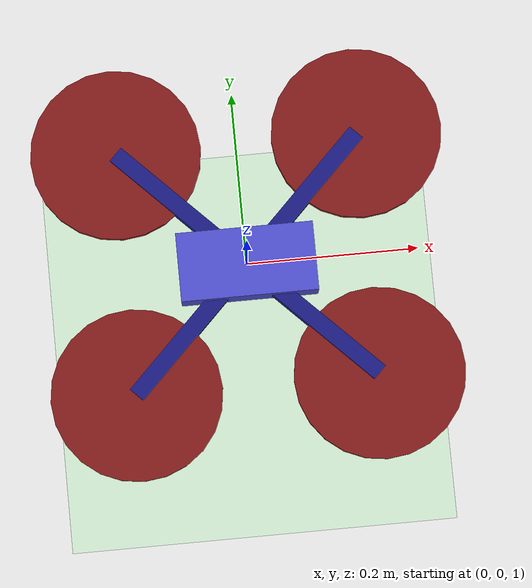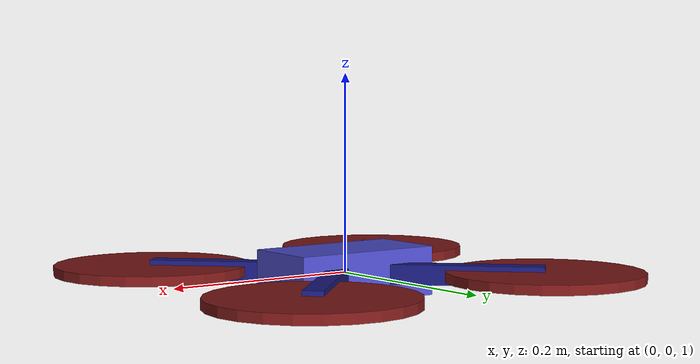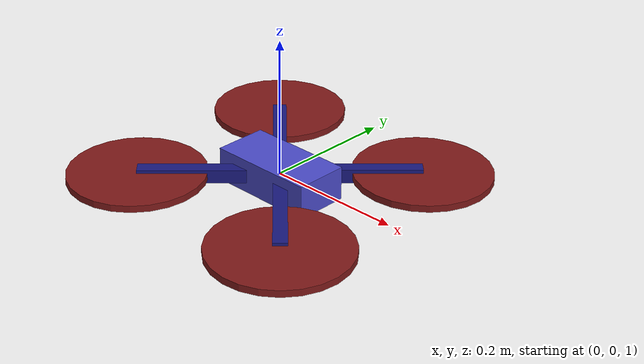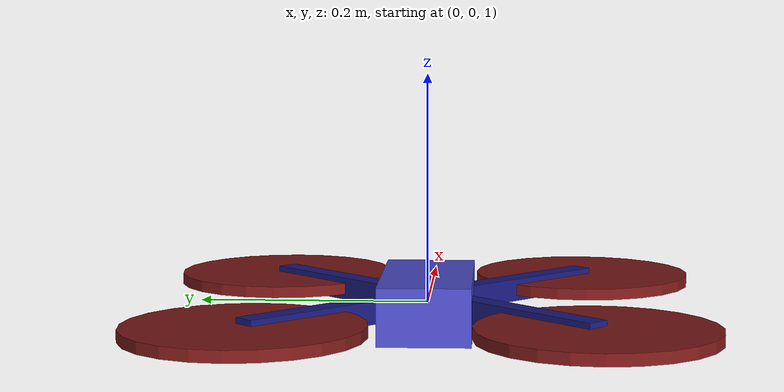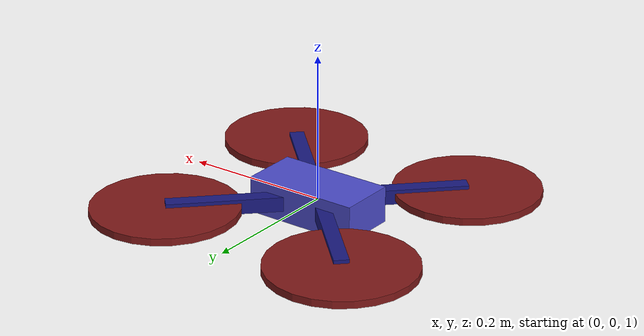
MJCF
<?xml version="1.0" ?>
<mujoco model="Quadcopter">
   <compiler angle="degree" coordinate="local" inertiafromgeom="true"/>
   <worldbody>
      <geom name="ground" type="plane" size="2 2 0.02" friction="1.0" pos="0.0 0.0 0.0" rgba="0.8 0.9 0.8 1.0"/>
      <body name="quadrotor" pos="0.0 0.0 1.0" quat="1 0 0 0">
         <geom name="geom" type="box" pos="0.0 0.0 0.0" quat="1 0 0 0" size="0.08 0.04 0.025" mass="0.75" density="1000" rgba="0.3 0.3 0.8 1.0"/>
         <joint name="root_joint" type="free" limited="false" pos="0.0 0.0 0.0" axis="0.0 0.0 1.0" range="-1.0 1.0" damping="0.1" stiffness="0.0" armature="0.0"/>
         <geom name="rotor_arm_geom_0" type="box" pos="0.0 0.0 0.0" quat="0.92388 0 0 0.382683" size="0.2 0.01 0.01" mass="0.01" density="1000" rgba="0.1 0.1 0.5 1.0"/>
         <body name="rotor_prop_0" pos="0.1414213562373095 0.14142135623730953 0.0" quat="1 0 0 0">
            <joint name="rotor_joint_0" type="hinge" limited="true" pos="0.1414213562373095 0.14142135623730953 0.0" axis="0.0 1.0 0.0" range="-0.001 0.001" damping="1000" stiffness="10000" armature="0.0"/>
            <geom name="rotor_prop_geom_0" type="cylinder" size="0.1 0.005" pos="0.0 0.0 0.0" mass="0.05" density="1000" rgba="0.5 0.1 0.1 1.0"/>
         </body>
         <geom name="rotor_arm_geom_1" type="box" pos="0.0 0.0 0.0" quat="0.382683 0 0 0.92388" size="0.2 0.01 0.01" mass="0.01" density="1000" rgba="0.1 0.1 0.5 1.0"/>
         <body name="rotor_prop_1" pos="-0.1414213562373095 0.14142135623730953 0.0" quat="1 0 0 0">
            <joint name="rotor_joint_1" type="hinge" limited="true" pos="-0.1414213562373095 0.14142135623730953 0.0" axis="0.0 1.0 0.0" range="-0.001 0.001" damping="1000" stiffness="10000" armature="0.0"/>
            <geom name="rotor_prop_geom_1" type="cylinder" size="0.1 0.005" pos="0.0 0.0 0.0" mass="0.05" density="1000" rgba="0.5 0.1 0.1 1.0"/>
         </body>
         <geom name="rotor_arm_geom_2" type="box" pos="0.0 0.0 0.0" quat="-0.382683 0 0 0.92388" size="0.2 0.01 0.01" mass="0.01" density="1000" rgba="0.1 0.1 0.5 1.0"/>
         <body name="rotor_prop_2" pos="-0.1414213562373095 -0.1414213562373095 0.0" quat="1 0 0 0">
            <joint name="rotor_joint_2" type="hinge" limited="true" pos="-0.1414213562373095 -0.1414213562373095 0.0" axis="0.0 1.0 0.0" range="-0.001 0.001" damping="1000" stiffness="10000" armature="0.0"/>
            <geom name="rotor_prop_geom_2" type="cylinder" size="0.1 0.005" pos="0.0 0.0 0.0" mass="0.05" density="1000" rgba="0.5 0.1 0.1 1.0"/>
         </body>
         <geom name="rotor_arm_geom_3" type="box" pos="0.0 0.0 0.0" quat="-0.92388 0 0 0.382683" size="0.2 0.01 0.01" mass="0.01" density="1000" rgba="0.1 0.1 0.5 1.0"/>
         <body name="rotor_prop_3" pos="0.14142135623730948 -0.14142135623730956 0.0" quat="1 0 0 0">
            <joint name="rotor_joint_3" type="hinge" limited="true" pos="0.14142135623730948 -0.14142135623730956 0.0" axis="0.0 1.0 0.0" range="-0.001 0.001" damping="1000" stiffness="10000" armature="0.0"/>
            <geom name="rotor_prop_geom_3" type="cylinder" size="0.1 0.005" pos="0.0 0.0 0.0" mass="0.05" density="1000" rgba="0.5 0.1 0.1 1.0"/>
         </body>
      </body>
   </worldbody>
</mujoco>
